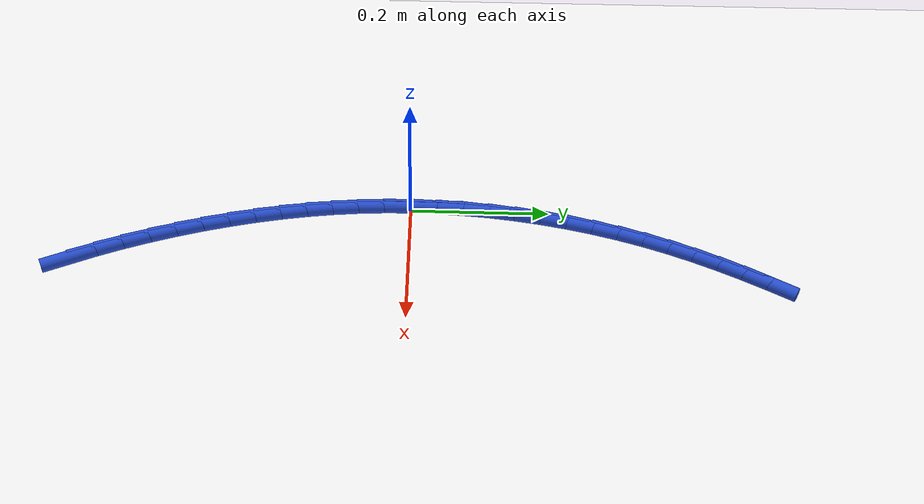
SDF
<sdf version="1.6">
 <world name="default">
  <model name="ground_plane">
   <static>1</static>
   <link name="link">
    <collision name="collision">
     <geometry><plane><normal>0 0 1</normal><size>100 100</size></plane></geometry>
     <surface><friction><ode><mu>100</mu><mu2>50</mu2></ode></friction></surface>
    </collision>
    <visual name="visual">
     <cast_shadows>0</cast_shadows>
     <geometry><plane><normal>0 0 1</normal><size>100 100</size></plane></geometry>
     <material>
      <script><uri>file://media/materials/scripts/gazebo.material</uri><name>Gazebo/WhiteGlow</name></script>
     </material>
    </visual>
   </link>
  </model>
  <model name="line">
   <link name="link_0">
    <pose>4.336808689942018e-18 -1.249000902703301e-16 0.01 0 1.57 1.5539545755507613</pose>
    <collision name="collision">
     <geometry><cylinder><radius>0.01</radius><length>0.08</length></cylinder></geometry>
    </collision>
    <visual name="visual">
     <material>
      <script><name>Gazebo/Blue</name><uri>file://media/materials/scripts/gazebo.material</uri></script>
     </material>
     <geometry><cylinder><radius>0.01</radius><length>0.08</length></cylinder></geometry>
    </visual>
   </link>
   <link name="link_1">
    <pose>0.0006335250294052567 0.03761278268761611 0.01 0 1.57 1.515289501972717</pose>
    <collision name="collision">
     <geometry><cylinder><radius>0.01</radius><length>0.08</length></cylinder></geometry>
    </collision>
    <visual name="visual">
     <material>
      <script><name>Gazebo/Blue</name><uri>file://media/materials/scripts/gazebo.material</uri></script>
     </material>
     <geometry><cylinder><radius>0.01</radius><length>0.08</length></cylinder></geometry>
    </visual>
   </link>
   <link name="link_2">
    <pose>0.002727701621116421 0.07530229982100126 0.01 0 1.57 1.4772211700218714</pose>
    <collision name="collision">
     <geometry><cylinder><radius>0.01</radius><length>0.08</length></cylinder></geometry>
    </collision>
    <visual name="visual">
     <material>
      <script><name>Gazebo/Blue</name><uri>file://media/materials/scripts/gazebo.material</uri></script>
     </material>
     <geometry><cylinder><radius>0.01</radius><length>0.08</length></cylinder></geometry>
    </visual>
   </link>
   <link name="link_3">
    <pose>0.006261176008129583 0.11295283746370512 0.01 0 1.57 1.4395035064379358</pose>
    <collision name="collision">
     <geometry><cylinder><radius>0.01</radius><length>0.08</length></cylinder></geometry>
    </collision>
    <visual name="visual">
     <material>
      <script><name>Gazebo/Blue</name><uri>file://media/materials/scripts/gazebo.material</uri></script>
     </material>
     <geometry><cylinder><radius>0.01</radius><length>0.08</length></cylinder></geometry>
    </visual>
   </link>
   <link name="link_4">
    <pose>0.011212594423440836 0.1504486816792772 0.01 0 1.57 1.4018922780809733</pose>
    <collision name="collision">
     <geometry><cylinder><radius>0.01</radius><length>0.08</length></cylinder></geometry>
    </collision>
    <visual name="visual">
     <material>
      <script><name>Gazebo/Blue</name><uri>file://media/materials/scripts/gazebo.material</uri></script>
     </material>
     <geometry><cylinder><radius>0.01</radius><length>0.08</length></cylinder></geometry>
    </visual>
   </link>
   <link name="link_5">
    <pose>0.017560603100046285 0.18767411853126736 0.01 0 1.57 1.3641424240355904</pose>
    <collision name="collision">
     <geometry><cylinder><radius>0.01</radius><length>0.08</length></cylinder></geometry>
    </collision>
    <visual name="visual">
     <material>
      <script><name>Gazebo/Blue</name><uri>file://media/materials/scripts/gazebo.material</uri></script>
     </material>
     <geometry><cylinder><radius>0.01</radius><length>0.08</length></cylinder></geometry>
    </visual>
   </link>
   <link name="link_6">
    <pose>0.02528384827094201 0.22451343408322516 0.01 0 1.57 1.326005252063748</pose>
    <collision name="collision">
     <geometry><cylinder><radius>0.01</radius><length>0.08</length></cylinder></geometry>
    </collision>
    <visual name="visual">
     <material>
      <script><name>Gazebo/Blue</name><uri>file://media/materials/scripts/gazebo.material</uri></script>
     </material>
     <geometry><cylinder><radius>0.01</radius><length>0.08</length></cylinder></geometry>
    </visual>
   </link>
   <link name="link_7">
    <pose>0.03436097616912411 0.2608509143987004 0.01 0 1.57 1.2872255732784494</pose>
    <collision name="collision">
     <geometry><cylinder><radius>0.01</radius><length>0.08</length></cylinder></geometry>
    </collision>
    <visual name="visual">
     <material>
      <script><name>Gazebo/Blue</name><uri>file://media/materials/scripts/gazebo.material</uri></script>
     </material>
     <geometry><cylinder><radius>0.01</radius><length>0.08</length></cylinder></geometry>
    </visual>
   </link>
   <link name="link_8">
    <pose>0.044770633027588685 0.2965708455412427 0.01 0 1.57 1.2475388583686626</pose>
    <collision name="collision">
     <geometry><cylinder><radius>0.01</radius><length>0.08</length></cylinder></geometry>
    </collision>
    <visual name="visual">
     <material>
      <script><name>Gazebo/Blue</name><uri>file://media/materials/scripts/gazebo.material</uri></script>
     </material>
     <geometry><cylinder><radius>0.01</radius><length>0.08</length></cylinder></geometry>
    </visual>
   </link>
   <link name="link_9">
    <pose>0.056491465079331823 0.3315575135744017 0.01 0 1.57 1.206916690669785</pose>
    <collision name="collision">
     <geometry><cylinder><radius>0.01</radius><length>0.08</length></cylinder></geometry>
    </collision>
    <visual name="visual">
     <material>
      <script><name>Gazebo/Blue</name><uri>file://media/materials/scripts/gazebo.material</uri></script>
     </material>
     <geometry><cylinder><radius>0.01</radius><length>0.08</length></cylinder></geometry>
    </visual>
   </link>
   <link name="link_10">
    <pose>0.06949816466066101 0.36571029598296767 0.01 0 1.57 1.1678840294439143</pose>
    <collision name="collision">
     <geometry><cylinder><radius>0.01</radius><length>0.08</length></cylinder></geometry>
    </collision>
    <visual name="visual">
     <material>
      <script><name>Gazebo/Blue</name><uri>file://media/materials/scripts/gazebo.material</uri></script>
     </material>
     <geometry><cylinder><radius>0.01</radius><length>0.08</length></cylinder></geometry>
    </visual>
   </link>
   <link name="link_11">
    <pose>0.08372407315496913 0.39908640053873257 0.01 0 1.57 1.1324112349614608</pose>
    <collision name="collision">
     <geometry><cylinder><radius>0.01</radius><length>0.08</length></cylinder></geometry>
    </collision>
    <visual name="visual">
     <material>
      <script><name>Gazebo/Blue</name><uri>file://media/materials/scripts/gazebo.material</uri></script>
     </material>
     <geometry><cylinder><radius>0.01</radius><length>0.08</length></cylinder></geometry>
    </visual>
   </link>
   <link name="link_12">
    <pose>0.09907789264635085 0.43183707946484 0.01 0 1.57 1.1009415273770418</pose>
    <collision name="collision">
     <geometry><cylinder><radius>0.01</radius><length>0.08</length></cylinder></geometry>
    </collision>
    <visual name="visual">
     <material>
      <script><name>Gazebo/Blue</name><uri>file://media/materials/scripts/gazebo.material</uri></script>
     </material>
     <geometry><cylinder><radius>0.01</radius><length>0.08</length></cylinder></geometry>
    </visual>
   </link>
   <link name="link_13">
    <pose>0.11546799715522622 0.4641148371534965 0.01 0 1.57 1.0737801264386635</pose>
    <collision name="collision">
     <geometry><cylinder><radius>0.01</radius><length>0.08</length></cylinder></geometry>
    </collision>
    <visual name="visual">
     <material>
      <script><name>Gazebo/Blue</name><uri>file://media/materials/scripts/gazebo.material</uri></script>
     </material>
     <geometry><cylinder><radius>0.01</radius><length>0.08</length></cylinder></geometry>
    </visual>
   </link>
   <link name="link_14">
    <pose>0.1328027607020151 0.49607217799690784 0.01 0 1.57 1.0511189738767226</pose>
    <collision name="collision">
     <geometry><cylinder><radius>0.01</radius><length>0.08</length></cylinder></geometry>
    </collision>
    <visual name="visual">
     <material>
      <script><name>Gazebo/Blue</name><uri>file://media/materials/scripts/gazebo.material</uri></script>
     </material>
     <geometry><cylinder><radius>0.01</radius><length>0.08</length></cylinder></geometry>
    </visual>
   </link>
   <link name="link_167">
    <pose>0.11435518841216978 -0.47281239379171836 0.01 0 1.57 -1.1288046666580547</pose>
    <collision name="collision">
     <geometry><cylinder><radius>0.01</radius><length>0.08</length></cylinder></geometry>
    </collision>
    <visual name="visual">
     <material>
      <script><name>Gazebo/Blue</name><uri>file://media/materials/scripts/gazebo.material</uri></script>
     </material>
     <geometry><cylinder><radius>0.01</radius><length>0.08</length></cylinder></geometry>
    </visual>
   </link>
   <link name="link_168">
    <pose>0.09798973626032474 -0.4382289143525202 0.01 0 1.57 -1.1682179609914898</pose>
    <collision name="collision">
     <geometry><cylinder><radius>0.01</radius><length>0.08</length></cylinder></geometry>
    </collision>
    <visual name="visual">
     <material>
      <script><name>Gazebo/Blue</name><uri>file://media/materials/scripts/gazebo.material</uri></script>
     </material>
     <geometry><cylinder><radius>0.01</radius><length>0.08</length></cylinder></geometry>
    </visual>
   </link>
   <link name="link_169">
    <pose>0.08295556789742052 -0.40292383124517256 0.01 0 1.57 -1.203608245425037</pose>
    <collision name="collision">
     <geometry><cylinder><radius>0.01</radius><length>0.08</length></cylinder></geometry>
    </collision>
    <visual name="visual">
     <material>
      <script><name>Gazebo/Blue</name><uri>file://media/materials/scripts/gazebo.material</uri></script>
     </material>
     <geometry><cylinder><radius>0.01</radius><length>0.08</length></cylinder></geometry>
    </visual>
   </link>
   <link name="link_170">
    <pose>0.06918518985529905 -0.367122370746038 0.01 0 1.57 -1.235411125943799</pose>
    <collision name="collision">
     <geometry><cylinder><radius>0.01</radius><length>0.08</length></cylinder></geometry>
    </collision>
    <visual name="visual">
     <material>
      <script><name>Gazebo/Blue</name><uri>file://media/materials/scripts/gazebo.material</uri></script>
     </material>
     <geometry><cylinder><radius>0.01</radius><length>0.08</length></cylinder></geometry>
    </visual>
   </link>
   <link name="link_171">
    <pose>0.05661159070350475 -0.33104866846855086 0.01 0 1.57 -1.2655486765171666</pose>
    <collision name="collision">
     <geometry><cylinder><radius>0.01</radius><length>0.08</length></cylinder></geometry>
    </collision>
    <visual name="visual">
     <material>
      <script><name>Gazebo/Blue</name><uri>file://media/materials/scripts/gazebo.material</uri></script>
     </material>
     <geometry><cylinder><radius>0.01</radius><length>0.08</length></cylinder></geometry>
    </visual>
   </link>
   <link name="link_172">
    <pose>0.04520396256631312 -0.2948449455307897 0.01 0 1.57 -1.2967774358769857</pose>
    <collision name="collision">
     <geometry><cylinder><radius>0.01</radius><length>0.08</length></cylinder></geometry>
    </collision>
    <visual name="visual">
     <material>
      <script><name>Gazebo/Blue</name><uri>file://media/materials/scripts/gazebo.material</uri></script>
     </material>
     <geometry><cylinder><radius>0.01</radius><length>0.08</length></cylinder></geometry>
    </visual>
   </link>
   <link name="link_173">
    <pose>0.03499225625553195 -0.2585159498865423 0.01 0 1.57 -1.329321923190439</pose>
    <collision name="collision">
     <geometry><cylinder><radius>0.01</radius><length>0.08</length></cylinder></geometry>
    </collision>
    <visual name="visual">
     <material>
      <script><name>Gazebo/Blue</name><uri>file://media/materials/scripts/gazebo.material</uri></script>
     </material>
     <geometry><cylinder><radius>0.01</radius><length>0.08</length></cylinder></geometry>
    </visual>
   </link>
   <link name="link_174">
    <pose>0.026012232209023677 -0.2220532845763422 0.01 0 1.57 -1.3631347263459799</pose>
    <collision name="collision">
     <geometry><cylinder><radius>0.01</radius><length>0.08</length></cylinder></geometry>
    </collision>
    <visual name="visual">
     <material>
      <script><name>Gazebo/Blue</name><uri>file://media/materials/scripts/gazebo.material</uri></script>
     </material>
     <geometry><cylinder><radius>0.01</radius><length>0.08</length></cylinder></geometry>
    </visual>
   </link>
   <link name="link_175">
    <pose>0.018299650864650706 -0.18544855264072269 0.01 0 1.57 -1.3981521099604863</pose>
    <collision name="collision">
     <geometry><cylinder><radius>0.01</radius><length>0.08</length></cylinder></geometry>
    </collision>
    <visual name="visual">
     <material>
      <script><name>Gazebo/Blue</name><uri>file://media/materials/scripts/gazebo.material</uri></script>
     </material>
     <geometry><cylinder><radius>0.01</radius><length>0.08</length></cylinder></geometry>
    </visual>
   </link>
   <link name="link_176">
    <pose>0.011890272660275354 -0.1486933571202163 0.01 0 1.57 -1.4342932310136012</pose>
    <collision name="collision">
     <geometry><cylinder><radius>0.01</radius><length>0.08</length></cylinder></geometry>
    </collision>
    <visual name="visual">
     <material>
      <script><name>Gazebo/Blue</name><uri>file://media/materials/scripts/gazebo.material</uri></script>
     </material>
     <geometry><cylinder><radius>0.01</radius><length>0.08</length></cylinder></geometry>
    </visual>
   </link>
   <link name="link_177">
    <pose>0.006819858033760272 -0.11177930105535794 0.01 0 1.57 -1.4714598626193112</pose>
    <collision name="collision">
     <geometry><cylinder><radius>0.01</radius><length>0.08</length></cylinder></geometry>
    </collision>
    <visual name="visual">
     <material>
      <script><name>Gazebo/Blue</name><uri>file://media/materials/scripts/gazebo.material</uri></script>
     </material>
     <geometry><cylinder><radius>0.01</radius><length>0.08</length></cylinder></geometry>
    </visual>
   </link>
   <link name="link_178">
    <pose>0.003124167422967741 -0.07469798748668022 0.01 0 1.57 -1.5095367297626991</pose>
    <collision name="collision">
     <geometry><cylinder><radius>0.01</radius><length>0.08</length></cylinder></geometry>
    </collision>
    <visual name="visual">
     <material>
      <script><name>Gazebo/Blue</name><uri>file://media/materials/scripts/gazebo.material</uri></script>
     </material>
     <geometry><cylinder><radius>0.01</radius><length>0.08</length></cylinder></geometry>
    </visual>
   </link>
   <link name="link_179">
    <pose>0.0008389612657601847 -0.03744101945471649 0.01 0 1.57 -1.5483925325961385</pose>
    <collision name="collision">
     <geometry><cylinder><radius>0.01</radius><length>0.08</length></cylinder></geometry>
    </collision>
    <visual name="visual">
     <material>
      <script><name>Gazebo/Blue</name><uri>file://media/materials/scripts/gazebo.material</uri></script>
     </material>
     <geometry><cylinder><radius>0.01</radius><length>0.08</length></cylinder></geometry>
    </visual>
   </link>
   <link name="link_180">
    <pose>1.5612511283791264e-17 -2.0122792321330962e-16 0.01 0 1.57 1.5537109629145283</pose>
    <collision name="collision">
     <geometry><cylinder><radius>0.01</radius><length>0.08</length></cylinder></geometry>
    </collision>
    <visual name="visual">
     <material>
      <script><name>Gazebo/Blue</name><uri>file://media/materials/scripts/gazebo.material</uri></script>
     </material>
     <geometry><cylinder><radius>0.01</radius><length>0.08</length></cylinder></geometry>
    </visual>
   </link>
   <link name="link_181">
    <pose>0.000643044063549647 0.03763346783693539 0.01 0 1.57 1.5537109629145278</pose>
    <collision name="collision">
     <geometry><cylinder><radius>0.01</radius><length>0.08</length></cylinder></geometry>
    </collision>
    <visual name="visual">
     <material>
      <script><name>Gazebo/Blue</name><uri>file://media/materials/scripts/gazebo.material</uri></script>
     </material>
     <geometry><cylinder><radius>0.01</radius><length>0.08</length></cylinder></geometry>
    </visual>
   </link>
  </model>
 </world>
</sdf>
